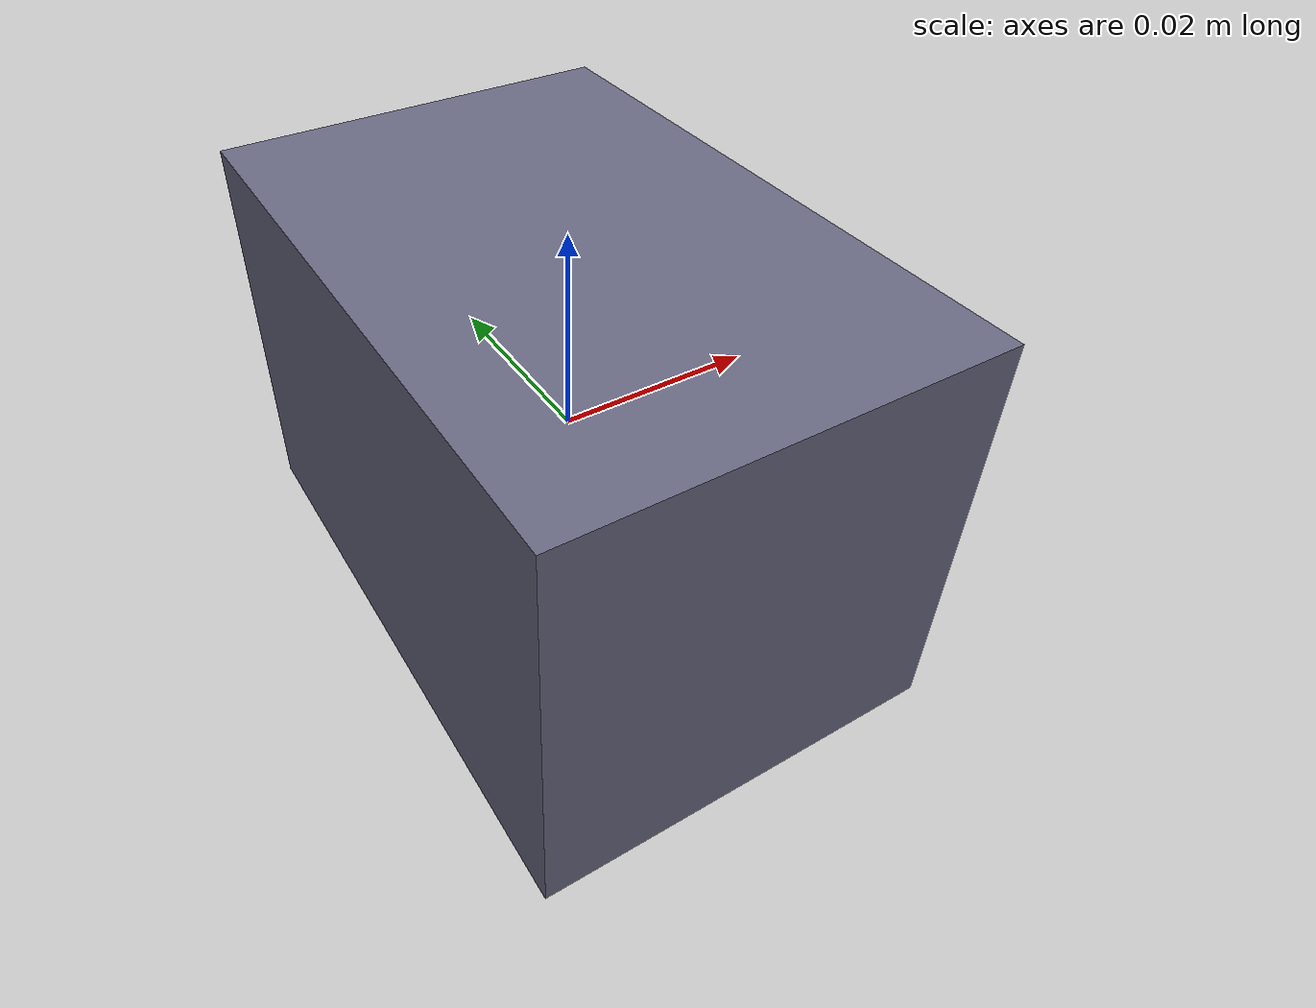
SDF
<?xml version="1.0" ?>
<sdf version="1.6">
  <model name="gp7_sim_rgbd_camera">
    <static>true</static>
    <link name="camera_link">
      <visual name="housing">
        <geometry>
          <box><size>0.04 0.06 0.04</size></box>
        </geometry>
        <material>
          <ambient>0.2 0.2 0.25 1</ambient>
          <diffuse>0.4 0.4 0.5 1</diffuse>
        </material>
      </visual>
      <sensor type="depth" name="rgbd_sensor">
        <update_rate>30</update_rate>
        <visualize>false</visualize>
        <camera>
          <horizontal_fov>1.5009831567</horizontal_fov>
          <image>
            <width>640</width>
            <height>480</height>
            <format>B8G8R8</format>
          </image>
          <depth_camera/>
          <clip>
            <near>0.1</near>
            <far>10.0</far>
          </clip>
        </camera>
        <plugin name="camera_ros" filename="libgazebo_ros_camera.so">
          <ros>
            <namespace>gp7_sim</namespace>
            <remapping>camera/image_raw:=camera/color/image_raw</remapping>
            <remapping>camera/camera_info:=camera/color/camera_info</remapping>
          </ros>
          <camera_name>camera</camera_name>
          <!-- Image / CameraInfo / depth headers use optical frame; mount is camera_link via static TF. -->
          <frame_name>camera_color_optical_frame</frame_name>
          <min_depth>0.1</min_depth>
          <max_depth>10.0</max_depth>
        </plugin>
      </sensor>
    </link>
  </model>
</sdf>
